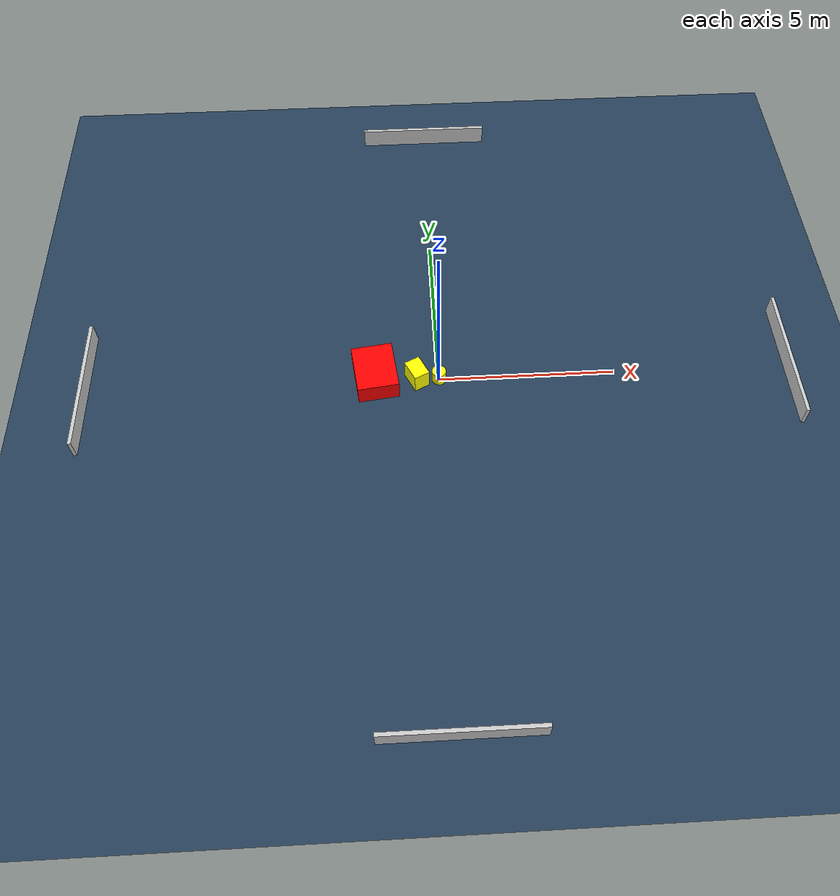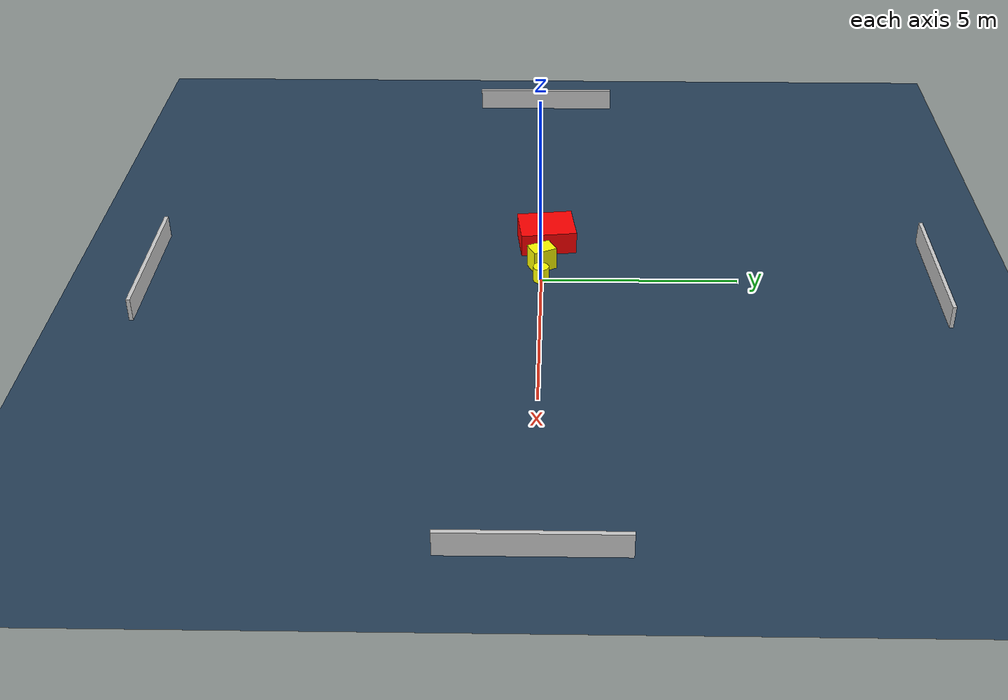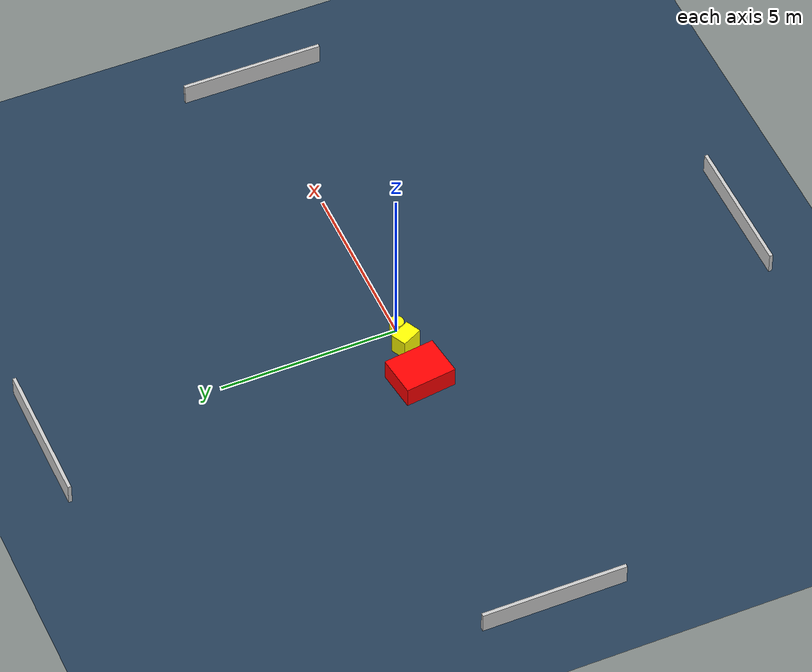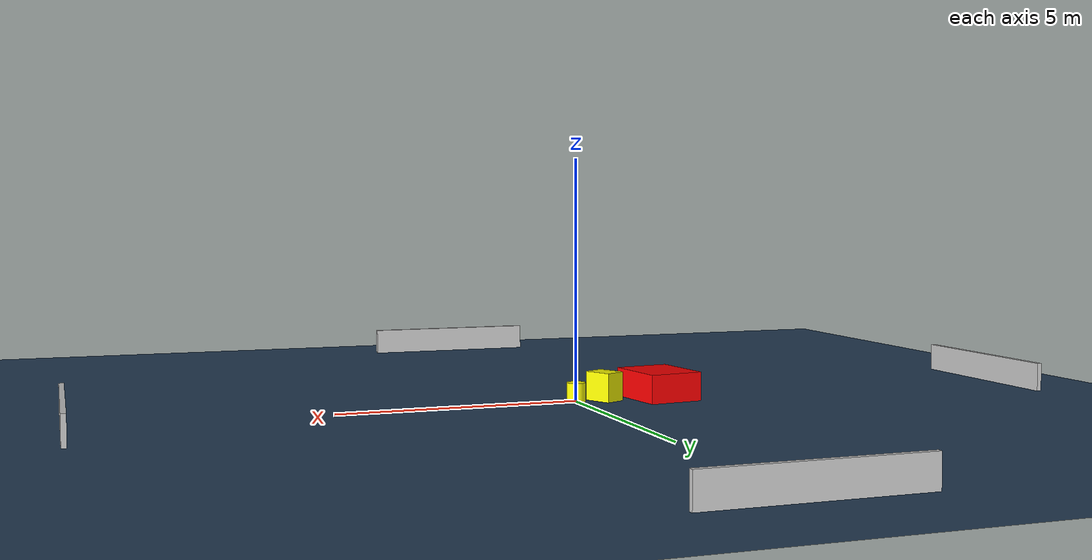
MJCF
<?xml version="1.0" ?>
<mujoco model="generated_environment">
  <option timestep="0.01" integrator="RK4" cone="elliptic"/>
  <default>
    <geom density="1"/>
  </default>
  <asset>
    <texture builtin="gradient" height="3072" name="skybox" rgb1="0.3 0.5 0.7" rgb2="0 0 0" type="skybox" width="512"/>
    <texture builtin="checker" height="300" name="groundplane" rgb1="0.2 0.3 0.4" rgb2="0.1 0.2 0.3" type="2d" width="300"/>
    <material name="groundplane" reflectance="0.2" texrepeat="5 5" texture="groundplane"/>
  </asset>
  <worldbody>
    <light dir="0 0 -1" directional="true" pos="0 0 1.5"/>
    <geom condim="3" friction="0.5 0.005 0.001" material="groundplane" name="floor" pos="0 0 0" size="0 0 0.05" type="plane"/>
    <body name="walls">
      <geom name="wall_1" condim="4" pos="-10.0 0.0 0.3" rgba="0.800000011920929 0.800000011920929 0.800000011920929 1.0" size="0.05 2.0 0.3" type="box"/>
      <geom name="wall_2" condim="4" pos="10.0 0.0 0.3" rgba="0.800000011920929 0.800000011920929 0.800000011920929 1.0" size="0.05 2.0 0.3" type="box"/>
      <geom name="wall_3" condim="4" pos="0.0 -10.0 0.3" rgba="0.800000011920929 0.800000011920929 0.800000011920929 1.0" size="2.0 0.05 0.3" type="box"/>
      <geom name="wall_4" condim="4" pos="0.0 10.0 0.3" rgba="0.800000011920929 0.800000011920929 0.800000011920929 1.0" size="2.0 0.05 0.3" type="box"/>
    </body>
    <body name="robot">
      <joint name="joint_x" type="slide" pos="0 0 0" axis="1 0 0"/>
      <joint name="joint_y" type="slide" pos="0 0 0" axis="0 1 0"/>
      <geom name="robot" type="cylinder" pos="0.0 0.0 0.2" size="0.2 0.2 0.0" mass="5.0" friction="1.0 0.005 0.0001" condim="4" rgba="1.0 1.0 0.0 1.0"/>
    </body>
    <body name="obstacle_1_movable">
      <geom name="obstacle_1_movable" condim="4" pos="-0.6264372150371373 0.008232331975056973 0.3" euler="0 0 116.31055174621589" friction="0.0 0.005 0.001" rgba="1.0 1.0 0.0 1.0" size="0.31159017307652975 0.2296796385075834 0.3" type="box" mass="0.1"/>
      <joint type="free"/>
    </body>
    <body name="obstacle_2_static">
      <geom name="obstacle_2_static" condim="4" pos="-1.8087305996792973 0.11983612597433269 0.3" euler="0 0 7.284223366507847" friction="0.0 0.005 0.001" rgba="1.0 0.0 0.0 1.0" size="0.5831642819498479 0.7251513535229435 0.3" type="box"/>
    </body>
  </worldbody>
  <actuator>
    <motor name="actuator_x" joint="joint_x" gear="1" ctrlrange="-1 1"/>
    <motor name="actuator_y" joint="joint_y" gear="1" ctrlrange="-1 1"/>
  </actuator>
</mujoco>
